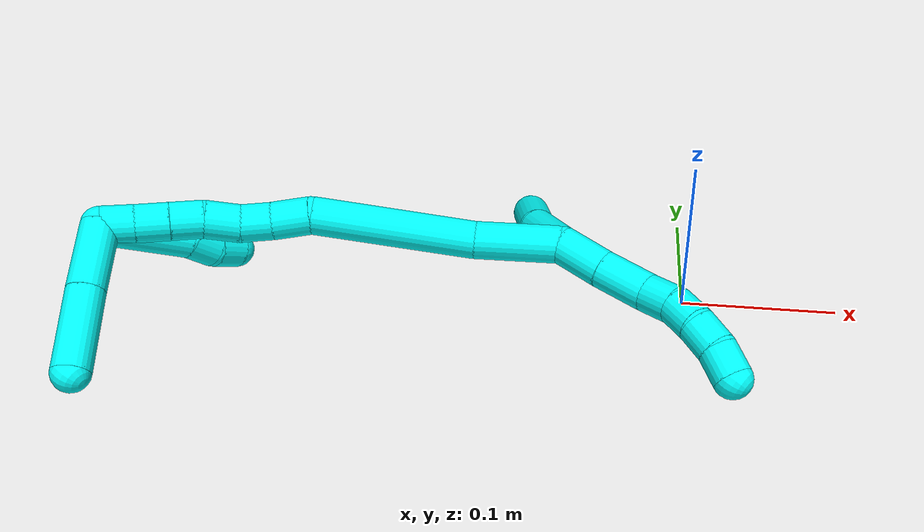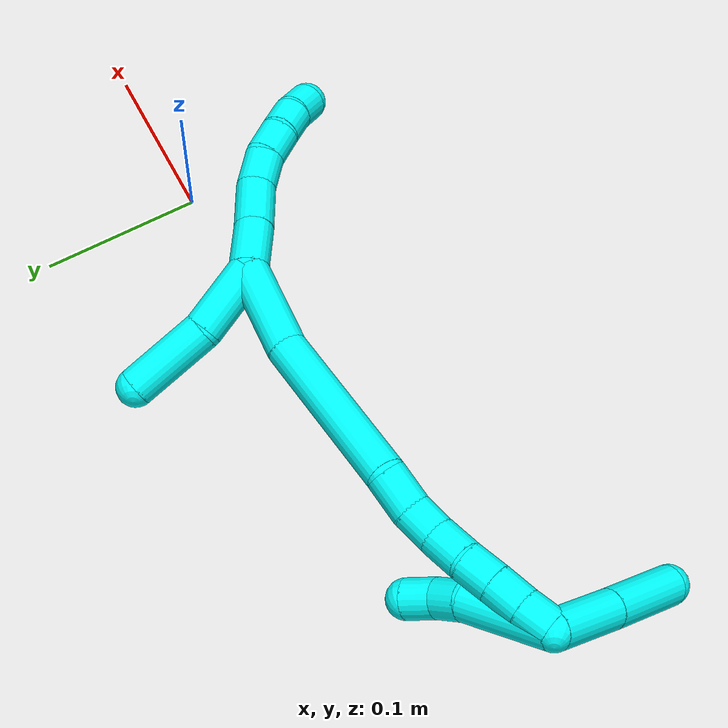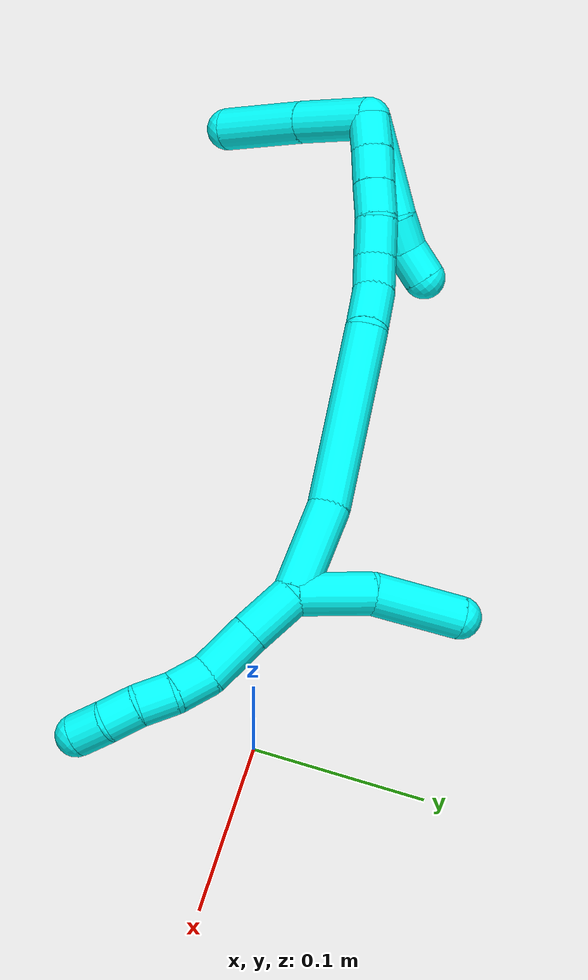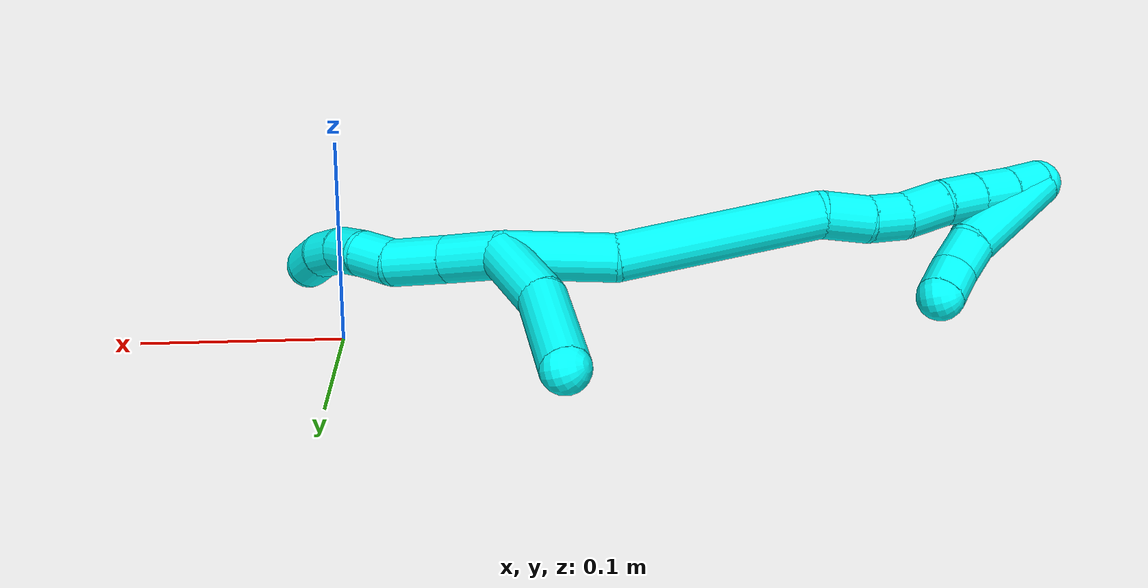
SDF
<sdf version="1.7">
 <world name="default">
  <model name="3">
   <static>0</static>
   <link name="3">
    <collision name="collision-cylinder-e_1_2_8">
     <pose>0.000871 -0.001662 -0.016306 3.04003 0.053115 0.963239</pose>
     <geometry><cylinder><radius>0.0125</radius><length>0.032827</length></cylinder></geometry>
     <surface>
      <friction><ode><mu>1.16</mu><mu2>1.16</mu2><slip1>0</slip1><slip2>0</slip2></ode></friction>
      <contact><ode><kp>1e+06</kp><kd>1</kd><max_vel>0</max_vel><min_depth>0.001</min_depth></ode></contact>
     </surface>
    </collision>
    <visual name="visual-cylinder-e_1_2_8">
     <pose>0.000871 -0.001662 -0.016306 3.04003 0.053115 0.963239</pose>
     <geometry><cylinder><radius>0.0125</radius><length>0.032827</length></cylinder></geometry>
     <material><ambient>0.003922 1 0.996078 1</ambient></material>
    </visual>
    <collision name="collision-cylinder-e_2_8_9">
     <pose>0.003586 -0.004866 -0.04911 3.04839 0.110805 1.74324</pose>
     <geometry><cylinder><radius>0.0125</radius><length>0.033345</length></cylinder></geometry>
     <surface>
      <friction><ode><mu>1.16</mu><mu2>1.16</mu2><slip1>0</slip1><slip2>0</slip2></ode></friction>
      <contact><ode><kp>1e+06</kp><kd>1</kd><max_vel>0</max_vel><min_depth>0.001</min_depth></ode></contact>
     </surface>
    </collision>
    <visual name="visual-cylinder-e_2_8_9">
     <pose>0.003586 -0.004866 -0.04911 3.04839 0.110805 1.74324</pose>
     <geometry><cylinder><radius>0.0125</radius><length>0.033345</length></cylinder></geometry>
     <material><ambient>0.003922 1 0.996078 1</ambient></material>
    </visual>
    <collision name="collision-cylinder-e_3_9_10">
     <pose>0.005888 -0.010819 -0.075882 2.73603 0.040916 0.19837</pose>
     <geometry><cylinder><radius>0.0125</radius><length>0.02238</length></cylinder></geometry>
     <surface>
      <friction><ode><mu>1.16</mu><mu2>1.16</mu2><slip1>0</slip1><slip2>0</slip2></ode></friction>
      <contact><ode><kp>1e+06</kp><kd>1</kd><max_vel>0</max_vel><min_depth>0.001</min_depth></ode></contact>
     </surface>
    </collision>
    <visual name="visual-cylinder-e_3_9_10">
     <pose>0.005888 -0.010819 -0.075882 2.73603 0.040916 0.19837</pose>
     <geometry><cylinder><radius>0.0125</radius><length>0.02238</length></cylinder></geometry>
     <material><ambient>0.003922 1 0.996078 1</ambient></material>
    </visual>
    <collision name="collision-cylinder-e_4_10_11">
     <pose>0.003956 -0.018858 -0.095644 2.77641 -0.230994 -1.12193</pose>
     <geometry><cylinder><radius>0.0125</radius><length>0.02087</length></cylinder></geometry>
     <surface>
      <friction><ode><mu>1.16</mu><mu2>1.16</mu2><slip1>0</slip1><slip2>0</slip2></ode></friction>
      <contact><ode><kp>1e+06</kp><kd>1</kd><max_vel>0</max_vel><min_depth>0.001</min_depth></ode></contact>
     </surface>
    </collision>
    <visual name="visual-cylinder-e_4_10_11">
     <pose>0.003956 -0.018858 -0.095644 2.77641 -0.230994 -1.12193</pose>
     <geometry><cylinder><radius>0.0125</radius><length>0.02087</length></cylinder></geometry>
     <material><ambient>0.003922 1 0.996078 1</ambient></material>
    </visual>
    <collision name="collision-cylinder-e_5_11_12">
     <pose>-0.001311 -0.023886 -0.114704 2.99626 -0.289183 -2.2144</pose>
     <geometry><cylinder><radius>0.0125</radius><length>0.020187</length></cylinder></geometry>
     <surface>
      <friction><ode><mu>1.16</mu><mu2>1.16</mu2><slip1>0</slip1><slip2>0</slip2></ode></friction>
      <contact><ode><kp>1e+06</kp><kd>1</kd><max_vel>0</max_vel><min_depth>0.001</min_depth></ode></contact>
     </surface>
    </collision>
    <visual name="visual-cylinder-e_5_11_12">
     <pose>-0.001311 -0.023886 -0.114704 2.99626 -0.289183 -2.2144</pose>
     <geometry><cylinder><radius>0.0125</radius><length>0.020187</length></cylinder></geometry>
     <material><ambient>0.003922 1 0.996078 1</ambient></material>
    </visual>
    <collision name="collision-cylinder-e_6_12_6">
     <pose>-0.008786 -0.025193 -0.133377 -3.13124 -0.46769 3.09813</pose>
     <geometry><cylinder><radius>0.0125</radius><length>0.020391</length></cylinder></geometry>
     <surface>
      <friction><ode><mu>1.16</mu><mu2>1.16</mu2><slip1>0</slip1><slip2>0</slip2></ode></friction>
      <contact><ode><kp>1e+06</kp><kd>1</kd><max_vel>0</max_vel><min_depth>0.001</min_depth></ode></contact>
     </surface>
    </collision>
    <visual name="visual-cylinder-e_6_12_6">
     <pose>-0.008786 -0.025193 -0.133377 -3.13124 -0.46769 3.09813</pose>
     <geometry><cylinder><radius>0.0125</radius><length>0.020391</length></cylinder></geometry>
     <material><ambient>0.003922 1 0.996078 1</ambient></material>
    </visual>
    <collision name="collision-cylinder-e_1_2_13">
     <pose>0.005163 0.015937 0.015745 -0.791448 0.226523 -0.094968</pose>
     <geometry><cylinder><radius>0.0125</radius><length>0.045981</length></cylinder></geometry>
     <surface>
      <friction><ode><mu>1.16</mu><mu2>1.16</mu2><slip1>0</slip1><slip2>0</slip2></ode></friction>
      <contact><ode><kp>1e+06</kp><kd>1</kd><max_vel>0</max_vel><min_depth>0.001</min_depth></ode></contact>
     </surface>
    </collision>
    <visual name="visual-cylinder-e_1_2_13">
     <pose>0.005163 0.015937 0.015745 -0.791448 0.226523 -0.094968</pose>
     <geometry><cylinder><radius>0.0125</radius><length>0.045981</length></cylinder></geometry>
     <material><ambient>0.003922 1 0.996078 1</ambient></material>
    </visual>
    <collision name="collision-cylinder-e_2_13_5">
     <pose>0.020364 0.053278 0.044552 -1.02289 0.380762 -0.215488</pose>
     <geometry><cylinder><radius>0.0125</radius><length>0.054019</length></cylinder></geometry>
     <surface>
      <friction><ode><mu>1.16</mu><mu2>1.16</mu2><slip1>0</slip1><slip2>0</slip2></ode></friction>
      <contact><ode><kp>1e+06</kp><kd>1</kd><max_vel>0</max_vel><min_depth>0.001</min_depth></ode></contact>
     </surface>
    </collision>
    <visual name="visual-cylinder-e_2_13_5">
     <pose>0.020364 0.053278 0.044552 -1.02289 0.380762 -0.215488</pose>
     <geometry><cylinder><radius>0.0125</radius><length>0.054019</length></cylinder></geometry>
     <material><ambient>0.003922 1 0.996078 1</ambient></material>
    </visual>
    <collision name="collision-cylinder-e_1_2_14">
     <pose>-0.016146 0.000447 0.023658 -0.018902 -0.598788 0.005835</pose>
     <geometry><cylinder><radius>0.0125</radius><length>0.057292</length></cylinder></geometry>
     <surface>
      <friction><ode><mu>1.16</mu><mu2>1.16</mu2><slip1>0</slip1><slip2>0</slip2></ode></friction>
      <contact><ode><kp>1e+06</kp><kd>1</kd><max_vel>0</max_vel><min_depth>0.001</min_depth></ode></contact>
     </surface>
    </collision>
    <visual name="visual-cylinder-e_1_2_14">
     <pose>-0.016146 0.000447 0.023658 -0.018902 -0.598788 0.005835</pose>
     <geometry><cylinder><radius>0.0125</radius><length>0.057292</length></cylinder></geometry>
     <material><ambient>0.003922 1 0.996078 1</ambient></material>
    </visual>
    <collision name="collision-cylinder-e_2_14_15">
     <pose>-0.062137 -0.011619 0.090547 0.281752 -0.585554 -0.085446</pose>
     <geometry><cylinder><radius>0.0125</radius><length>0.108005</length></cylinder></geometry>
     <surface>
      <friction><ode><mu>1.16</mu><mu2>1.16</mu2><slip1>0</slip1><slip2>0</slip2></ode></friction>
      <contact><ode><kp>1e+06</kp><kd>1</kd><max_vel>0</max_vel><min_depth>0.001</min_depth></ode></contact>
     </surface>
    </collision>
    <visual name="visual-cylinder-e_2_14_15">
     <pose>-0.062137 -0.011619 0.090547 0.281752 -0.585554 -0.085446</pose>
     <geometry><cylinder><radius>0.0125</radius><length>0.108005</length></cylinder></geometry>
     <material><ambient>0.003922 1 0.996078 1</ambient></material>
    </visual>
    <collision name="collision-cylinder-e_3_15_16">
     <pose>-0.101439 -0.024046 0.142613 -0.00975 -0.819434 0.004234</pose>
     <geometry><cylinder><radius>0.0125</radius><length>0.025883</length></cylinder></geometry>
     <surface>
      <friction><ode><mu>1.16</mu><mu2>1.16</mu2><slip1>0</slip1><slip2>0</slip2></ode></friction>
      <contact><ode><kp>1e+06</kp><kd>1</kd><max_vel>0</max_vel><min_depth>0.001</min_depth></ode></contact>
     </surface>
    </collision>
    <visual name="visual-cylinder-e_3_15_16">
     <pose>-0.101439 -0.024046 0.142613 -0.00975 -0.819434 0.004234</pose>
     <geometry><cylinder><radius>0.0125</radius><length>0.025883</length></cylinder></geometry>
     <material><ambient>0.003922 1 0.996078 1</ambient></material>
    </visual>
    <collision name="collision-cylinder-e_4_16_17">
     <pose>-0.118619 -0.025965 0.158311 0.284193 -0.823765 -0.124836</pose>
     <geometry><cylinder><radius>0.0125</radius><length>0.02105</length></cylinder></geometry>
     <surface>
      <friction><ode><mu>1.16</mu><mu2>1.16</mu2><slip1>0</slip1><slip2>0</slip2></ode></friction>
      <contact><ode><kp>1e+06</kp><kd>1</kd><max_vel>0</max_vel><min_depth>0.001</min_depth></ode></contact>
     </surface>
    </collision>
    <visual name="visual-cylinder-e_4_16_17">
     <pose>-0.118619 -0.025965 0.158311 0.284193 -0.823765 -0.124836</pose>
     <geometry><cylinder><radius>0.0125</radius><length>0.02105</length></cylinder></geometry>
     <material><ambient>0.003922 1 0.996078 1</ambient></material>
    </visual>
    <collision name="collision-cylinder-e_5_17_18">
     <pose>-0.133448 -0.032295 0.173522 0.478098 -0.647354 -0.163154</pose>
     <geometry><cylinder><radius>0.0125</radius><length>0.02357</length></cylinder></geometry>
     <surface>
      <friction><ode><mu>1.16</mu><mu2>1.16</mu2><slip1>0</slip1><slip2>0</slip2></ode></friction>
      <contact><ode><kp>1e+06</kp><kd>1</kd><max_vel>0</max_vel><min_depth>0.001</min_depth></ode></contact>
     </surface>
    </collision>
    <visual name="visual-cylinder-e_5_17_18">
     <pose>-0.133448 -0.032295 0.173522 0.478098 -0.647354 -0.163154</pose>
     <geometry><cylinder><radius>0.0125</radius><length>0.02357</length></cylinder></geometry>
     <material><ambient>0.003922 1 0.996078 1</ambient></material>
    </visual>
    <collision name="collision-cylinder-e_6_18_19">
     <pose>-0.148453 -0.039791 0.188267 0.460003 -0.835687 -0.207171</pose>
     <geometry><cylinder><radius>0.0125</radius><length>0.021294</length></cylinder></geometry>
     <surface>
      <friction><ode><mu>1.16</mu><mu2>1.16</mu2><slip1>0</slip1><slip2>0</slip2></ode></friction>
      <contact><ode><kp>1e+06</kp><kd>1</kd><max_vel>0</max_vel><min_depth>0.001</min_depth></ode></contact>
     </surface>
    </collision>
    <visual name="visual-cylinder-e_6_18_19">
     <pose>-0.148453 -0.039791 0.188267 0.460003 -0.835687 -0.207171</pose>
     <geometry><cylinder><radius>0.0125</radius><length>0.021294</length></cylinder></geometry>
     <material><ambient>0.003922 1 0.996078 1</ambient></material>
    </visual>
    <collision name="collision-cylinder-e_7_19_20">
     <pose>-0.164375 -0.045907 0.201343 0.41555 -0.832659 -0.1859</pose>
     <geometry><cylinder><radius>0.0125</radius><length>0.021696</length></cylinder></geometry>
     <surface>
      <friction><ode><mu>1.16</mu><mu2>1.16</mu2><slip1>0</slip1><slip2>0</slip2></ode></friction>
      <contact><ode><kp>1e+06</kp><kd>1</kd><max_vel>0</max_vel><min_depth>0.001</min_depth></ode></contact>
     </surface>
    </collision>
    <visual name="visual-cylinder-e_7_19_20">
     <pose>-0.164375 -0.045907 0.201343 0.41555 -0.832659 -0.1859</pose>
     <geometry><cylinder><radius>0.0125</radius><length>0.021696</length></cylinder></geometry>
     <material><ambient>0.003922 1 0.996078 1</ambient></material>
    </visual>
    <collision name="collision-cylinder-e_8_20_1">
     <pose>-0.180184 -0.052343 0.214323 0.505695 -0.82426 -0.224954</pose>
     <geometry><cylinder><radius>0.0125</radius><length>0.021211</length></cylinder></geometry>
     <surface>
      <friction><ode><mu>1.16</mu><mu2>1.16</mu2><slip1>0</slip1><slip2>0</slip2></ode></friction>
      <contact><ode><kp>1e+06</kp><kd>1</kd><max_vel>0</max_vel><min_depth>0.001</min_depth></ode></contact>
     </surface>
    </collision>
    <visual name="visual-cylinder-e_8_20_1">
     <pose>-0.180184 -0.052343 0.214323 0.505695 -0.82426 -0.224954</pose>
     <geometry><cylinder><radius>0.0125</radius><length>0.021211</length></cylinder></geometry>
     <material><ambient>0.003922 1 0.996078 1</ambient></material>
    </visual>
    <collision name="collision-cylinder-e_1_1_21">
     <pose>-0.171131 -0.036013 0.206073 -2.20408 0.600479 -1.09747</pose>
     <geometry><cylinder><radius>0.0125</radius><length>0.059599</length></cylinder></geometry>
     <surface>
      <friction><ode><mu>1.16</mu><mu2>1.16</mu2><slip1>0</slip1><slip2>0</slip2></ode></friction>
      <contact><ode><kp>1e+06</kp><kd>1</kd><max_vel>0</max_vel><min_depth>0.001</min_depth></ode></contact>
     </surface>
    </collision>
    <visual name="visual-cylinder-e_1_1_21">
     <pose>-0.171131 -0.036013 0.206073 -2.20408 0.600479 -1.09747</pose>
     <geometry><cylinder><radius>0.0125</radius><length>0.059599</length></cylinder></geometry>
     <material><ambient>0.003922 1 0.996078 1</ambient></material>
    </visual>
    <collision name="collision-cylinder-e_2_21_22">
     <pose>-0.150416 -0.007951 0.187328 -2.04159 0.396965 -0.633978</pose>
     <geometry><cylinder><radius>0.0125</radius><length>0.020058</length></cylinder></geometry>
     <surface>
      <friction><ode><mu>1.16</mu><mu2>1.16</mu2><slip1>0</slip1><slip2>0</slip2></ode></friction>
      <contact><ode><kp>1e+06</kp><kd>1</kd><max_vel>0</max_vel><min_depth>0.001</min_depth></ode></contact>
     </surface>
    </collision>
    <visual name="visual-cylinder-e_2_21_22">
     <pose>-0.150416 -0.007951 0.187328 -2.04159 0.396965 -0.633978</pose>
     <geometry><cylinder><radius>0.0125</radius><length>0.020058</length></cylinder></geometry>
     <material><ambient>0.003922 1 0.996078 1</ambient></material>
    </visual>
    <collision name="collision-cylinder-e_3_22_4">
     <pose>-0.140658 0.008358 0.181176 -1.80876 0.616368 -0.769223</pose>
     <geometry><cylinder><radius>0.0125</radius><length>0.020343</length></cylinder></geometry>
     <surface>
      <friction><ode><mu>1.16</mu><mu2>1.16</mu2><slip1>0</slip1><slip2>0</slip2></ode></friction>
      <contact><ode><kp>1e+06</kp><kd>1</kd><max_vel>0</max_vel><min_depth>0.001</min_depth></ode></contact>
     </surface>
    </collision>
    <visual name="visual-cylinder-e_3_22_4">
     <pose>-0.140658 0.008358 0.181176 -1.80876 0.616368 -0.769223</pose>
     <geometry><cylinder><radius>0.0125</radius><length>0.020343</length></cylinder></geometry>
     <material><ambient>0.003922 1 0.996078 1</ambient></material>
    </visual>
    <collision name="collision-cylinder-e_1_1_23">
     <pose>-0.206076 -0.057454 0.206387 3.02813 -0.901379 -2.90793</pose>
     <geometry><cylinder><radius>0.0125</radius><length>0.04618</length></cylinder></geometry>
     <surface>
      <friction><ode><mu>1.16</mu><mu2>1.16</mu2><slip1>0</slip1><slip2>0</slip2></ode></friction>
      <contact><ode><kp>1e+06</kp><kd>1</kd><max_vel>0</max_vel><min_depth>0.001</min_depth></ode></contact>
     </surface>
    </collision>
    <visual name="visual-cylinder-e_1_1_23">
     <pose>-0.206076 -0.057454 0.206387 3.02813 -0.901379 -2.90793</pose>
     <geometry><cylinder><radius>0.0125</radius><length>0.04618</length></cylinder></geometry>
     <material><ambient>0.003922 1 0.996078 1</ambient></material>
    </visual>
    <collision name="collision-cylinder-e_2_23_3">
     <pose>-0.24488 -0.060476 0.175011 3.06012 -0.877496 -2.9683</pose>
     <geometry><cylinder><radius>0.0125</radius><length>0.05382</length></cylinder></geometry>
     <surface>
      <friction><ode><mu>1.16</mu><mu2>1.16</mu2><slip1>0</slip1><slip2>0</slip2></ode></friction>
      <contact><ode><kp>1e+06</kp><kd>1</kd><max_vel>0</max_vel><min_depth>0.001</min_depth></ode></contact>
     </surface>
    </collision>
    <visual name="visual-cylinder-e_2_23_3">
     <pose>-0.24488 -0.060476 0.175011 3.06012 -0.877496 -2.9683</pose>
     <geometry><cylinder><radius>0.0125</radius><length>0.05382</length></cylinder></geometry>
     <material><ambient>0.003922 1 0.996078 1</ambient></material>
    </visual>
    <collision name="collision-sphere-3">
     <pose>-0.265578 -0.061876 0.15787 0 -0 0</pose>
     <geometry><sphere><radius>0.0125</radius></sphere></geometry>
     <surface>
      <friction><ode><mu>1.16</mu><mu2>1.16</mu2><slip1>0</slip1><slip2>0</slip2></ode></friction>
      <contact><ode><kp>1e+06</kp><kd>1</kd><max_vel>0</max_vel><min_depth>0.001</min_depth></ode></contact>
     </surface>
    </collision>
    <visual name="visual-sphere-3">
     <pose>-0.265578 -0.061876 0.15787 0 -0 0</pose>
     <geometry><sphere><radius>0.0125</radius></sphere></geometry>
     <material><ambient>0.003922 1 0.996078 1</ambient></material>
    </visual>
    <collision name="collision-sphere-23">
     <pose>-0.224182 -0.059076 0.192152 0 -0 0</pose>
     <geometry><sphere><radius>0.0125</radius></sphere></geometry>
     <surface>
      <friction><ode><mu>1.16</mu><mu2>1.16</mu2><slip1>0</slip1><slip2>0</slip2></ode></friction>
      <contact><ode><kp>1e+06</kp><kd>1</kd><max_vel>0</max_vel><min_depth>0.001</min_depth></ode></contact>
     </surface>
    </collision>
    <visual name="visual-sphere-23">
     <pose>-0.224182 -0.059076 0.192152 0 -0 0</pose>
     <geometry><sphere><radius>0.0125</radius></sphere></geometry>
     <material><ambient>0.003922 1 0.996078 1</ambient></material>
    </visual>
    <collision name="collision-sphere-4">
     <pose>-0.134778 0.016424 0.179219 0 -0 0</pose>
     <geometry><sphere><radius>0.0125</radius></sphere></geometry>
     <surface>
      <friction><ode><mu>1.16</mu><mu2>1.16</mu2><slip1>0</slip1><slip2>0</slip2></ode></friction>
      <contact><ode><kp>1e+06</kp><kd>1</kd><max_vel>0</max_vel><min_depth>0.001</min_depth></ode></contact>
     </surface>
    </collision>
    <visual name="visual-sphere-4">
     <pose>-0.134778 0.016424 0.179219 0 -0 0</pose>
     <geometry><sphere><radius>0.0125</radius></sphere></geometry>
     <material><ambient>0.003922 1 0.996078 1</ambient></material>
    </visual>
    <collision name="collision-sphere-22">
     <pose>-0.146538 0.000292 0.183132 0 -0 0</pose>
     <geometry><sphere><radius>0.0125</radius></sphere></geometry>
     <surface>
      <friction><ode><mu>1.16</mu><mu2>1.16</mu2><slip1>0</slip1><slip2>0</slip2></ode></friction>
      <contact><ode><kp>1e+06</kp><kd>1</kd><max_vel>0</max_vel><min_depth>0.001</min_depth></ode></contact>
     </surface>
    </collision>
    <visual name="visual-sphere-22">
     <pose>-0.146538 0.000292 0.183132 0 -0 0</pose>
     <geometry><sphere><radius>0.0125</radius></sphere></geometry>
     <material><ambient>0.003922 1 0.996078 1</ambient></material>
    </visual>
    <collision name="collision-sphere-21">
     <pose>-0.154293 -0.016194 0.191523 0 -0 0</pose>
     <geometry><sphere><radius>0.0125</radius></sphere></geometry>
     <surface>
      <friction><ode><mu>1.16</mu><mu2>1.16</mu2><slip1>0</slip1><slip2>0</slip2></ode></friction>
      <contact><ode><kp>1e+06</kp><kd>1</kd><max_vel>0</max_vel><min_depth>0.001</min_depth></ode></contact>
     </surface>
    </collision>
    <visual name="visual-sphere-21">
     <pose>-0.154293 -0.016194 0.191523 0 -0 0</pose>
     <geometry><sphere><radius>0.0125</radius></sphere></geometry>
     <material><ambient>0.003922 1 0.996078 1</ambient></material>
    </visual>
    <collision name="collision-sphere-1">
     <pose>-0.187969 -0.055832 0.220623 0 -0 0</pose>
     <geometry><sphere><radius>0.0125</radius></sphere></geometry>
     <surface>
      <friction><ode><mu>1.16</mu><mu2>1.16</mu2><slip1>0</slip1><slip2>0</slip2></ode></friction>
      <contact><ode><kp>1e+06</kp><kd>1</kd><max_vel>0</max_vel><min_depth>0.001</min_depth></ode></contact>
     </surface>
    </collision>
    <visual name="visual-sphere-1">
     <pose>-0.187969 -0.055832 0.220623 0 -0 0</pose>
     <geometry><sphere><radius>0.0125</radius></sphere></geometry>
     <material><ambient>0.003922 1 0.996078 1</ambient></material>
    </visual>
    <collision name="collision-sphere-12">
     <pose>-0.004189 -0.025287 -0.124277 0 -0 0</pose>
     <geometry><sphere><radius>0.0125</radius></sphere></geometry>
     <surface>
      <friction><ode><mu>1.16</mu><mu2>1.16</mu2><slip1>0</slip1><slip2>0</slip2></ode></friction>
      <contact><ode><kp>1e+06</kp><kd>1</kd><max_vel>0</max_vel><min_depth>0.001</min_depth></ode></contact>
     </surface>
    </collision>
    <visual name="visual-sphere-12">
     <pose>-0.004189 -0.025287 -0.124277 0 -0 0</pose>
     <geometry><sphere><radius>0.0125</radius></sphere></geometry>
     <material><ambient>0.003922 1 0.996078 1</ambient></material>
    </visual>
    <collision name="collision-sphere-11">
     <pose>0.001567 -0.022485 -0.105132 0 -0 0</pose>
     <geometry><sphere><radius>0.0125</radius></sphere></geometry>
     <surface>
      <friction><ode><mu>1.16</mu><mu2>1.16</mu2><slip1>0</slip1><slip2>0</slip2></ode></friction>
      <contact><ode><kp>1e+06</kp><kd>1</kd><max_vel>0</max_vel><min_depth>0.001</min_depth></ode></contact>
     </surface>
    </collision>
    <visual name="visual-sphere-11">
     <pose>0.001567 -0.022485 -0.105132 0 -0 0</pose>
     <geometry><sphere><radius>0.0125</radius></sphere></geometry>
     <material><ambient>0.003922 1 0.996078 1</ambient></material>
    </visual>
    <collision name="collision-sphere-10">
     <pose>0.006345 -0.01523 -0.086156 0 -0 0</pose>
     <geometry><sphere><radius>0.0125</radius></sphere></geometry>
     <surface>
      <friction><ode><mu>1.16</mu><mu2>1.16</mu2><slip1>0</slip1><slip2>0</slip2></ode></friction>
      <contact><ode><kp>1e+06</kp><kd>1</kd><max_vel>0</max_vel><min_depth>0.001</min_depth></ode></contact>
     </surface>
    </collision>
    <visual name="visual-sphere-10">
     <pose>0.006345 -0.01523 -0.086156 0 -0 0</pose>
     <geometry><sphere><radius>0.0125</radius></sphere></geometry>
     <material><ambient>0.003922 1 0.996078 1</ambient></material>
    </visual>
    <collision name="collision-sphere-9">
     <pose>0.00543 -0.006408 -0.065608 0 -0 0</pose>
     <geometry><sphere><radius>0.0125</radius></sphere></geometry>
     <surface>
      <friction><ode><mu>1.16</mu><mu2>1.16</mu2><slip1>0</slip1><slip2>0</slip2></ode></friction>
      <contact><ode><kp>1e+06</kp><kd>1</kd><max_vel>0</max_vel><min_depth>0.001</min_depth></ode></contact>
     </surface>
    </collision>
    <visual name="visual-sphere-9">
     <pose>0.00543 -0.006408 -0.065608 0 -0 0</pose>
     <geometry><sphere><radius>0.0125</radius></sphere></geometry>
     <material><ambient>0.003922 1 0.996078 1</ambient></material>
    </visual>
    <collision name="collision-sphere-2">
     <geometry><sphere><radius>0.0125</radius></sphere></geometry>
     <surface>
      <friction><ode><mu>1.16</mu><mu2>1.16</mu2><slip1>0</slip1><slip2>0</slip2></ode></friction>
      <contact><ode><kp>1e+06</kp><kd>1</kd><max_vel>0</max_vel><min_depth>0.001</min_depth></ode></contact>
     </surface>
    </collision>
    <visual name="visual-sphere-2">
     <geometry><sphere><radius>0.0125</radius></sphere></geometry>
     <material><ambient>0.003922 1 0.996078 1</ambient></material>
    </visual>
    <collision name="collision-sphere-19">
     <pose>-0.15635 -0.042961 0.194665 0 -0 0</pose>
     <geometry><sphere><radius>0.0125</radius></sphere></geometry>
     <surface>
      <friction><ode><mu>1.16</mu><mu2>1.16</mu2><slip1>0</slip1><slip2>0</slip2></ode></friction>
      <contact><ode><kp>1e+06</kp><kd>1</kd><max_vel>0</max_vel><min_depth>0.001</min_depth></ode></contact>
     </surface>
    </collision>
    <visual name="visual-sphere-19">
     <pose>-0.15635 -0.042961 0.194665 0 -0 0</pose>
     <geometry><sphere><radius>0.0125</radius></sphere></geometry>
     <material><ambient>0.003922 1 0.996078 1</ambient></material>
    </visual>
    <collision name="collision-sphere-8">
     <pose>0.001743 -0.003323 -0.032612 0 -0 0</pose>
     <geometry><sphere><radius>0.0125</radius></sphere></geometry>
     <surface>
      <friction><ode><mu>1.16</mu><mu2>1.16</mu2><slip1>0</slip1><slip2>0</slip2></ode></friction>
      <contact><ode><kp>1e+06</kp><kd>1</kd><max_vel>0</max_vel><min_depth>0.001</min_depth></ode></contact>
     </surface>
    </collision>
    <visual name="visual-sphere-8">
     <pose>0.001743 -0.003323 -0.032612 0 -0 0</pose>
     <geometry><sphere><radius>0.0125</radius></sphere></geometry>
     <material><ambient>0.003922 1 0.996078 1</ambient></material>
    </visual>
    <collision name="collision-sphere-6">
     <pose>-0.013382 -0.025099 -0.142477 0 -0 0</pose>
     <geometry><sphere><radius>0.0125</radius></sphere></geometry>
     <surface>
      <friction><ode><mu>1.16</mu><mu2>1.16</mu2><slip1>0</slip1><slip2>0</slip2></ode></friction>
      <contact><ode><kp>1e+06</kp><kd>1</kd><max_vel>0</max_vel><min_depth>0.001</min_depth></ode></contact>
     </surface>
    </collision>
    <visual name="visual-sphere-6">
     <pose>-0.013382 -0.025099 -0.142477 0 -0 0</pose>
     <geometry><sphere><radius>0.0125</radius></sphere></geometry>
     <material><ambient>0.003922 1 0.996078 1</ambient></material>
    </visual>
    <collision name="collision-sphere-13">
     <pose>0.010327 0.031874 0.031491 0 -0 0</pose>
     <geometry><sphere><radius>0.0125</radius></sphere></geometry>
     <surface>
      <friction><ode><mu>1.16</mu><mu2>1.16</mu2><slip1>0</slip1><slip2>0</slip2></ode></friction>
      <contact><ode><kp>1e+06</kp><kd>1</kd><max_vel>0</max_vel><min_depth>0.001</min_depth></ode></contact>
     </surface>
    </collision>
    <visual name="visual-sphere-13">
     <pose>0.010327 0.031874 0.031491 0 -0 0</pose>
     <geometry><sphere><radius>0.0125</radius></sphere></geometry>
     <material><ambient>0.003922 1 0.996078 1</ambient></material>
    </visual>
    <collision name="collision-sphere-5">
     <pose>0.030402 0.074683 0.057614 0 -0 0</pose>
     <geometry><sphere><radius>0.0125</radius></sphere></geometry>
     <surface>
      <friction><ode><mu>1.16</mu><mu2>1.16</mu2><slip1>0</slip1><slip2>0</slip2></ode></friction>
      <contact><ode><kp>1e+06</kp><kd>1</kd><max_vel>0</max_vel><min_depth>0.001</min_depth></ode></contact>
     </surface>
    </collision>
    <visual name="visual-sphere-5">
     <pose>0.030402 0.074683 0.057614 0 -0 0</pose>
     <geometry><sphere><radius>0.0125</radius></sphere></geometry>
     <material><ambient>0.003922 1 0.996078 1</ambient></material>
    </visual>
    <collision name="collision-sphere-14">
     <pose>-0.032292 0.000894 0.047316 0 -0 0</pose>
     <geometry><sphere><radius>0.0125</radius></sphere></geometry>
     <surface>
      <friction><ode><mu>1.16</mu><mu2>1.16</mu2><slip1>0</slip1><slip2>0</slip2></ode></friction>
      <contact><ode><kp>1e+06</kp><kd>1</kd><max_vel>0</max_vel><min_depth>0.001</min_depth></ode></contact>
     </surface>
    </collision>
    <visual name="visual-sphere-14">
     <pose>-0.032292 0.000894 0.047316 0 -0 0</pose>
     <geometry><sphere><radius>0.0125</radius></sphere></geometry>
     <material><ambient>0.003922 1 0.996078 1</ambient></material>
    </visual>
    <collision name="collision-sphere-15">
     <pose>-0.091982 -0.024132 0.133779 0 -0 0</pose>
     <geometry><sphere><radius>0.0125</radius></sphere></geometry>
     <surface>
      <friction><ode><mu>1.16</mu><mu2>1.16</mu2><slip1>0</slip1><slip2>0</slip2></ode></friction>
      <contact><ode><kp>1e+06</kp><kd>1</kd><max_vel>0</max_vel><min_depth>0.001</min_depth></ode></contact>
     </surface>
    </collision>
    <visual name="visual-sphere-15">
     <pose>-0.091982 -0.024132 0.133779 0 -0 0</pose>
     <geometry><sphere><radius>0.0125</radius></sphere></geometry>
     <material><ambient>0.003922 1 0.996078 1</ambient></material>
    </visual>
    <collision name="collision-sphere-16">
     <pose>-0.110897 -0.02396 0.151447 0 -0 0</pose>
     <geometry><sphere><radius>0.0125</radius></sphere></geometry>
     <surface>
      <friction><ode><mu>1.16</mu><mu2>1.16</mu2><slip1>0</slip1><slip2>0</slip2></ode></friction>
      <contact><ode><kp>1e+06</kp><kd>1</kd><max_vel>0</max_vel><min_depth>0.001</min_depth></ode></contact>
     </surface>
    </collision>
    <visual name="visual-sphere-16">
     <pose>-0.110897 -0.02396 0.151447 0 -0 0</pose>
     <geometry><sphere><radius>0.0125</radius></sphere></geometry>
     <material><ambient>0.003922 1 0.996078 1</ambient></material>
    </visual>
    <collision name="collision-sphere-17">
     <pose>-0.126341 -0.02797 0.165175 0 -0 0</pose>
     <geometry><sphere><radius>0.0125</radius></sphere></geometry>
     <surface>
      <friction><ode><mu>1.16</mu><mu2>1.16</mu2><slip1>0</slip1><slip2>0</slip2></ode></friction>
      <contact><ode><kp>1e+06</kp><kd>1</kd><max_vel>0</max_vel><min_depth>0.001</min_depth></ode></contact>
     </surface>
    </collision>
    <visual name="visual-sphere-17">
     <pose>-0.126341 -0.02797 0.165175 0 -0 0</pose>
     <geometry><sphere><radius>0.0125</radius></sphere></geometry>
     <material><ambient>0.003922 1 0.996078 1</ambient></material>
    </visual>
    <collision name="collision-sphere-18">
     <pose>-0.140556 -0.036621 0.181868 0 -0 0</pose>
     <geometry><sphere><radius>0.0125</radius></sphere></geometry>
     <surface>
      <friction><ode><mu>1.16</mu><mu2>1.16</mu2><slip1>0</slip1><slip2>0</slip2></ode></friction>
      <contact><ode><kp>1e+06</kp><kd>1</kd><max_vel>0</max_vel><min_depth>0.001</min_depth></ode></contact>
     </surface>
    </collision>
    <visual name="visual-sphere-18">
     <pose>-0.140556 -0.036621 0.181868 0 -0 0</pose>
     <geometry><sphere><radius>0.0125</radius></sphere></geometry>
     <material><ambient>0.003922 1 0.996078 1</ambient></material>
    </visual>
    <collision name="collision-sphere-20">
     <pose>-0.172399 -0.048854 0.208022 0 -0 0</pose>
     <geometry><sphere><radius>0.0125</radius></sphere></geometry>
     <surface>
      <friction><ode><mu>1.16</mu><mu2>1.16</mu2><slip1>0</slip1><slip2>0</slip2></ode></friction>
      <contact><ode><kp>1e+06</kp><kd>1</kd><max_vel>0</max_vel><min_depth>0.001</min_depth></ode></contact>
     </surface>
    </collision>
    <visual name="visual-sphere-20">
     <pose>-0.172399 -0.048854 0.208022 0 -0 0</pose>
     <geometry><sphere><radius>0.0125</radius></sphere></geometry>
     <material><ambient>0.003922 1 0.996078 1</ambient></material>
    </visual>
    <inertial>
     <pose>-0.084977 -0.016526 0.0881 0 -0 0</pose>
     <mass>0.75</mass>
     <inertia><ixx>9.1e-05</ixx><ixy>0</ixy><ixz>0</ixz><iyy>0.000155</iyy><iyz>0</iyz><izz>7.7e-05</izz></inertia>
    </inertial>
   </link>
   <pose>-0.08077 -0.002241 0.041453 -1.21765 -0.505712 0.846616</pose>
  </model>
 </world>
</sdf>
